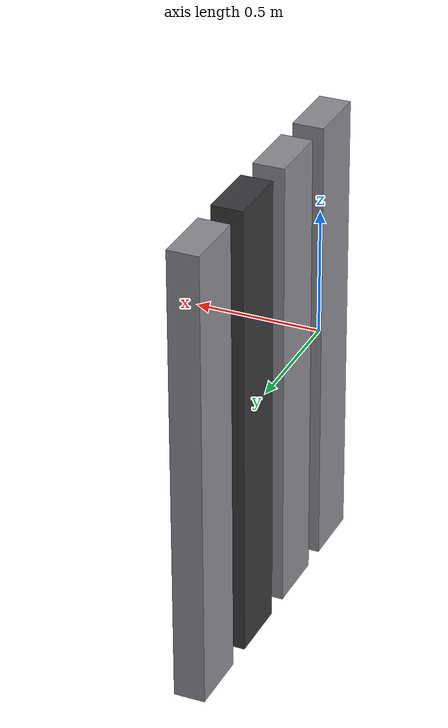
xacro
<?xml version="1.0"?>
<robot name="tars" xmlns:xacro="http://www.ros.org/wiki/xacro">

  <!-- Materials -->
  <material name="tars_grey"><color rgba="0.55 0.55 0.58 1.0"/></material>
  <material name="tars_dark"><color rgba="0.22 0.22 0.24 1.0"/></material>

  <!-- Box geometry macro -->
  <xacro:macro name="slab_visual_collision" params="mat">
    <visual>
      <origin xyz="0 0 0" rpy="0 0 0"/>
      <geometry><box size="0.12 0.25 1.8"/></geometry>
      <material name="${mat}"/>
    </visual>
    <collision>
      <origin xyz="0 0 0" rpy="0 0 0"/>
      <geometry><box size="0.12 0.25 1.8"/></geometry>
    </collision>
  </xacro:macro>

  <!-- Inertia macro (solid box m=20kg, size=0.12x0.25x1.8) -->
  <xacro:macro name="slab_inertial">
    <inertial>
      <origin xyz="0 0 0" rpy="0 0 0"/>
      <mass value="20.0"/>
      <inertia ixx="5.504167" ixy="0.0" ixz="0.0" iyy="5.424000" iyz="0.0" izz="0.128167"/>
    </inertial>
  </xacro:macro>

  <!-- Links -->
  <link name="slab_1">
    <xacro:slab_inertial/>
    <xacro:slab_visual_collision mat="tars_grey"/>
  </link>
  <link name="slab_2">
    <xacro:slab_inertial/>
    <xacro:slab_visual_collision mat="tars_grey"/>
  </link>
  <link name="slab_3">
    <xacro:slab_inertial/>
    <xacro:slab_visual_collision mat="tars_dark"/>
  </link>
  <link name="slab_4">
    <xacro:slab_inertial/>
    <xacro:slab_visual_collision mat="tars_grey"/>
  </link>

  <!-- Joints: chain along +Y, pitch around X -->
  <joint name="slab_1_to_2" type="revolute">
    <origin xyz="0 0.35 0" rpy="0 0 0"/>
    <parent link="slab_1"/>
    <child link="slab_2"/>
    <axis xyz="1 0 0"/>
    <limit lower="-2.0" upper="2.0" velocity="2.0" effort="50.0"/>
    <dynamics damping="0.2" friction="0.0"/>
  </joint>

  <joint name="slab_2_to_3" type="revolute">
    <origin xyz="0 0.35 0" rpy="0 0 0"/>
    <parent link="slab_2"/>
    <child link="slab_3"/>
    <axis xyz="1 0 0"/>
    <limit lower="-2.0" upper="2.0" velocity="2.0" effort="50.0"/>
    <dynamics damping="0.2" friction="0.0"/>
  </joint>

  <joint name="slab_3_to_4" type="revolute">
    <origin xyz="0 0.35 0" rpy="0 0 0"/>
    <parent link="slab_3"/>
    <child link="slab_4"/>
    <axis xyz="1 0 0"/>
    <limit lower="-2.0" upper="2.0" velocity="2.0" effort="50.0"/>
    <dynamics damping="0.2" friction="0.0"/>
  </joint>

  <!-- Gazebo Classic physics bits per link (friction, contact) -->
  <gazebo reference="slab_1">
    <mu1>1.0</mu1><mu2>1.0</mu2>
    <kp>1e6</kp><kd>1.0</kd>
    <self_collide>true</self_collide>
  </gazebo>
  <gazebo reference="slab_2">
    <mu1>1.0</mu1><mu2>1.0</mu2>
    <kp>1e6</kp><kd>1.0</kd>
    <self_collide>true</self_collide>
  </gazebo>
  <gazebo reference="slab_3">
    <mu1>1.0</mu1><mu2>1.0</mu2>
    <kp>1e6</kp><kd>1.0</kd>
    <self_collide>true</self_collide>
  </gazebo>
  <gazebo reference="slab_4">
    <mu1>1.0</mu1><mu2>1.0</mu2>
    <kp>1e6</kp><kd>1.0</kd>
    <self_collide>true</self_collide>
  </gazebo>

  <!-- ros2_control: use Gazebo Classic system interface -->
  <gazebo>
    <plugin name="gazebo_ros2_control" filename="libgazebo_ros2_control.so"/>
  </gazebo>

  <ros2_control name="GazeboSystem" type="system">
    <hardware>
      <plugin>gazebo_ros2_control/GazeboSystem</plugin>
    </hardware>
    <joint name="slab_1_to_2">
      <command_interface name="position"/>
      <state_interface name="position"/>
      <state_interface name="velocity"/>
    </joint>
    <joint name="slab_2_to_3">
      <command_interface name="position"/>
      <state_interface name="position"/>
      <state_interface name="velocity"/>
    </joint>
    <joint name="slab_3_to_4">
      <command_interface name="position"/>
      <state_interface name="position"/>
      <state_interface name="velocity"/>
    </joint>
  </ros2_control>

</robot>
